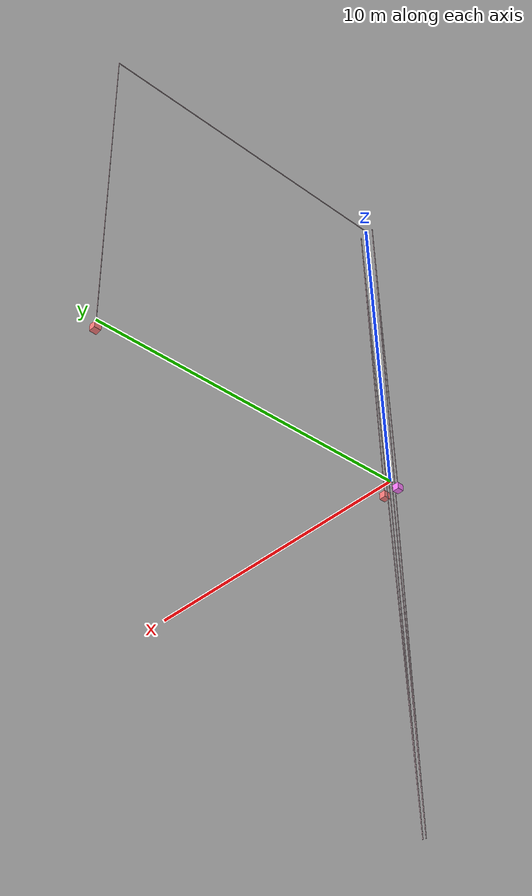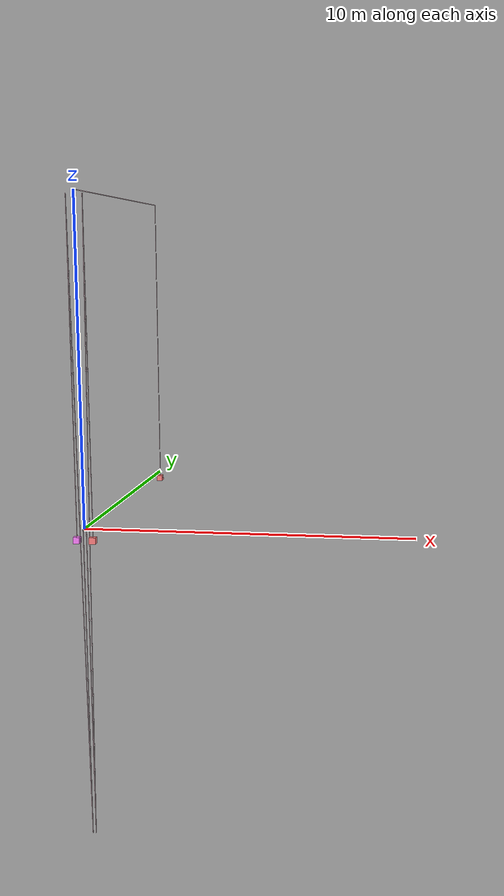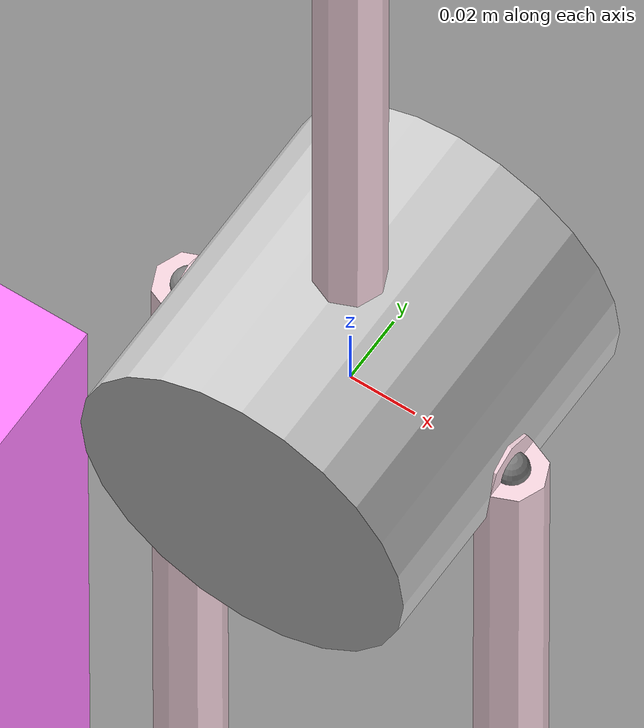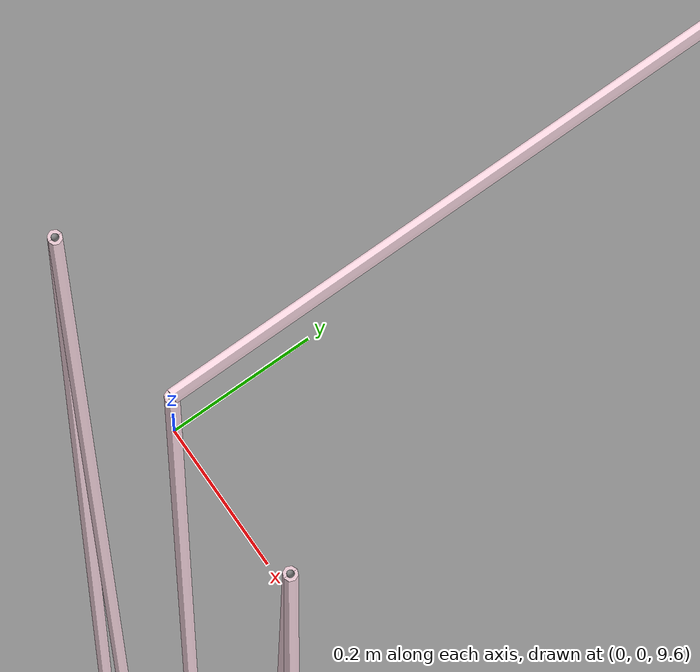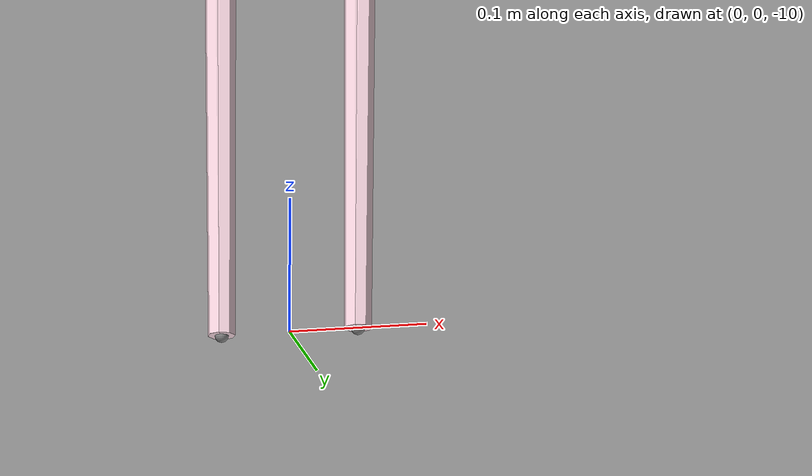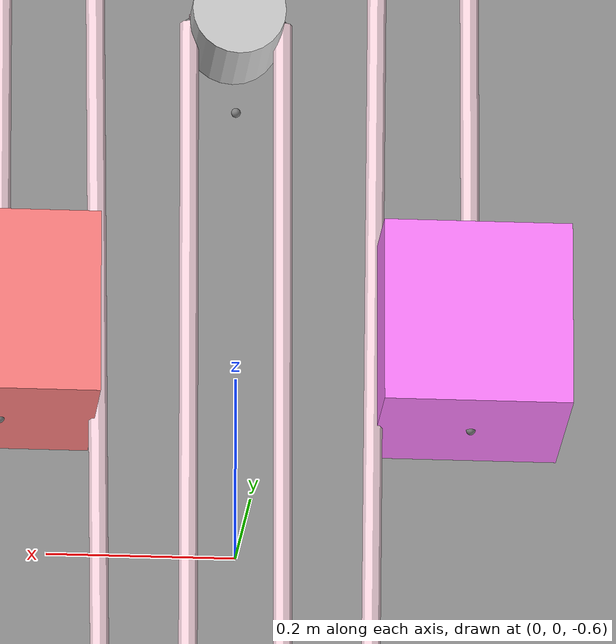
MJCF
<mujoco>
            <compiler angle="radian" autolimits="true" />
            <compiler meshdir="asset" texturedir="asset" assetdir="asset" />
            <option gravity="0 0 -9.81" />
            <default class="main">
            <geom friction="0 0 0" solimp="0.9 1 0.001 0.01 20" solref="0.02 1" condim="1" />
        </default>

        <visual>
            <headlight diffuse="0.7 0.7 0.7" ambient="0.5 0.5 0.5" />
            <global offwidth="1920" offheight="1080" />
        </visual>

        <asset>
            <texture type="skybox" builtin="gradient" rgb1="0 0.5 0.7" rgb2="0 0 0" width="512" height="512" />
            <texture type="2d" name="checks1" builtin="checker" rgb1="1 1 1" rgb2="0 0 0" width="256" height="256" />
            <material name="test_color" texture="checks1" texuniform="true" texrepeat="2 2" />
            <material name="reflectance" reflectance=".4" />
            <texture name="grid" type="2d" builtin="checker" width="512" height="512" rgb1="1.0 0.6235 0.1098" rgb2="1.0 0.749 0.4118" />
            <texture name="white-texture-background" type="2d" file="/home/aryansatpathy/DevStuff/cmu/PHO/sim/geom_sources/fixed_sources/rocket/rocket.white-texture-background.png" content_type="image/png" />
            <material name="pulley" texture="grid" texrepeat="2 2" texuniform="true" />

        </asset>
        <worldbody><body name="masswithreversedmovablepulley_0.left_mass_with_fixed_pulley.fixed_pulley" pos="-0.25 0.0 9.9" quat="1.0 0.0 0.0 0.0"><site name="masswithreversedmovablepulley_0.left_mass_with_fixed_pulley.fixed_pulley.site" pos="0 0 0.0" quat="1.0 -0.0 -0.0 -0.0" />
</body>
<body name="masswithreversedmovablepulley_0.left_mass_with_fixed_pulley.mass" pos="-0.25 0.0 -0.35" quat="1.0 0.0 0.0 0.0">
<geom name="masswithreversedmovablepulley_0.left_mass_with_fixed_pulley.mass.geom" type="box" pos="0 0 0" size="0.1 0.1 0.1" rgba="1.0 0.5 1.0 1.0" mass="4.36" quat="0 0 0 1" condim="1" contype="1" conaffinity="1" />
<site name="masswithreversedmovablepulley_0.left_mass_with_fixed_pulley.mass.top-1" pos="0.0 0 0.1" quat="1.0 -0.0 -0.0 -0.0" />
<site name="masswithreversedmovablepulley_0.left_mass_with_fixed_pulley.mass.sensor" pos="0 0 0" quat="1.0 -0.0 -0.0 -0.0" />
<site name="masswithreversedmovablepulley_0.left_mass_with_fixed_pulley.mass.center" pos="0 0 0" quat="1.0 -0.0 -0.0 -0.0" />
<site name="masswithreversedmovablepulley_0.left_mass_with_fixed_pulley.mass.left" pos="-0.1 0 0" quat="1.0 -0.0 -0.0 -0.0" />
<site name="masswithreversedmovablepulley_0.left_mass_with_fixed_pulley.mass.right" pos="0.1 0 0" quat="1.0 -0.0 -0.0 -0.0" />
<site name="masswithreversedmovablepulley_0.left_mass_with_fixed_pulley.mass.bottom" pos="0 0 -0.1" quat="1.0 -0.0 -0.0 -0.0" />
<joint name="masswithreversedmovablepulley_0.left_mass_with_fixed_pulley.mass.joint" type="slide" axis="0 0 1" pos="0 0 0" />
</body>
<body name="masswithreversedmovablepulley_0.movable_pulley" pos="0.0 0.0 0.0" quat="1.0 0.0 0.0 0.0"><geom name="masswithreversedmovablepulley_0.movable_pulley.geom" type="cylinder" pos="0 0 0" size="0.05 0.05" material="pulley" rgba="0.8 0.8 0.8 1.0" mass="0.15" quat="0 0 0.7071068 0.7071068" contype="1" conaffinity="1" />
<site name="masswithreversedmovablepulley_0.movable_pulley.site" pos="0.0 0 0.05" quat="1.0 -0.0 -0.0 -0.0" />
<site name="masswithreversedmovablepulley_0.movable_pulley.sensor" pos="0 0 0" quat="1.0 -0.0 -0.0 -0.0" />
<site name="masswithreversedmovablepulley_0.movable_pulley.tendon_site" pos="0.0 0 -0.1" quat="1.0 -0.0 -0.0 -0.0" />
<site name="masswithreversedmovablepulley_0.movable_pulley.left_tendon_site" pos="-0.05 0 0" quat="1.0 -0.0 -0.0 -0.0" />
<site name="masswithreversedmovablepulley_0.movable_pulley.right_tendon_site" pos="0.05 0 0" quat="1.0 -0.0 -0.0 -0.0" />
<joint type="slide" axis="1 0 0" pos="0 0 0" />
<joint type="slide" axis="0 1 0" pos="0 0 0" />
<joint type="slide" axis="0 0 1" pos="0 0 0" />
</body>
<body name="masswithreversedmovablepulley_0.right_mass_with_fixed_pulley.fixed_pulley" pos="0.25 0.0 9.9" quat="1.0 0.0 0.0 0.0"><site name="masswithreversedmovablepulley_0.right_mass_with_fixed_pulley.fixed_pulley.site" pos="0 0 0.0" quat="1.0 -0.0 -0.0 -0.0" />
</body>
<body name="masswithreversedmovablepulley_0.right_mass_with_fixed_pulley.mass" pos="0.25 0.0 -0.35" quat="1.0 0.0 0.0 0.0">
<geom name="masswithreversedmovablepulley_0.right_mass_with_fixed_pulley.mass.geom" type="box" pos="0 0 0" size="0.1 0.1 0.1" rgba="1.0 0.5 0.5 1.0" mass="4.29" quat="0 0 0 1" condim="1" contype="1" conaffinity="1" />
<site name="masswithreversedmovablepulley_0.right_mass_with_fixed_pulley.mass.top-1" pos="0.0 0 0.1" quat="1.0 -0.0 -0.0 -0.0" />
<site name="masswithreversedmovablepulley_0.right_mass_with_fixed_pulley.mass.sensor" pos="0 0 0" quat="1.0 -0.0 -0.0 -0.0" />
<site name="masswithreversedmovablepulley_0.right_mass_with_fixed_pulley.mass.center" pos="0 0 0" quat="1.0 -0.0 -0.0 -0.0" />
<site name="masswithreversedmovablepulley_0.right_mass_with_fixed_pulley.mass.left" pos="-0.1 0 0" quat="1.0 -0.0 -0.0 -0.0" />
<site name="masswithreversedmovablepulley_0.right_mass_with_fixed_pulley.mass.right" pos="0.1 0 0" quat="1.0 -0.0 -0.0 -0.0" />
<site name="masswithreversedmovablepulley_0.right_mass_with_fixed_pulley.mass.bottom" pos="0 0 -0.1" quat="1.0 -0.0 -0.0 -0.0" />
<joint name="masswithreversedmovablepulley_0.right_mass_with_fixed_pulley.mass.joint" type="slide" axis="0 0 1" pos="0 0 0" />
</body>
<body name="masswithreversedmovablepulley_0.fixed_pulley_above" pos="0.0 0.0 10.0" quat="1.0 0.0 0.0 0.0"><site name="masswithreversedmovablepulley_0.fixed_pulley_above.site" pos="0 0 0.0" quat="1.0 -0.0 -0.0 -0.0" />
</body>
<body name="masswithreversedmovablepulley_0.left_pulley_below" pos="-0.05 0.0 -10.0" quat="1.0 0.0 0.0 0.0"><site name="masswithreversedmovablepulley_0.left_pulley_below.site" pos="0 0 0.0" quat="1.0 -0.0 -0.0 -0.0" />
</body>
<body name="masswithreversedmovablepulley_0.right_pulley_below" pos="0.05 0.0 -10.0" quat="1.0 0.0 0.0 0.0"><site name="masswithreversedmovablepulley_0.right_pulley_below.site" pos="0 0 0.0" quat="1.0 -0.0 -0.0 -0.0" />
</body>
<body name="masswithfixedpulley_1.fixed_pulley" pos="0.0 10.0 10.0" quat="1.0 0.0 0.0 0.0"><site name="masswithfixedpulley_1.fixed_pulley.site" pos="0 0 0.0" quat="1.0 -0.0 -0.0 -0.0" />
</body>
<body name="masswithfixedpulley_1.mass" pos="0.0 10.0 -0.25" quat="1.0 0.0 0.0 0.0">
<geom name="masswithfixedpulley_1.mass.geom" type="box" pos="0 0 0" size="0.1 0.1 0.1" rgba="1.0 0.5 0.5 1.0" mass="2.6" quat="0 0 0 1" condim="1" contype="1" conaffinity="1" />
<site name="masswithfixedpulley_1.mass.top-1" pos="0.0 0 0.1" quat="1.0 -0.0 -0.0 -0.0" />
<site name="masswithfixedpulley_1.mass.sensor" pos="0 0 0" quat="1.0 -0.0 -0.0 -0.0" />
<site name="masswithfixedpulley_1.mass.center" pos="0 0 0" quat="1.0 -0.0 -0.0 -0.0" />
<site name="masswithfixedpulley_1.mass.left" pos="-0.1 0 0" quat="1.0 -0.0 -0.0 -0.0" />
<site name="masswithfixedpulley_1.mass.right" pos="0.1 0 0" quat="1.0 -0.0 -0.0 -0.0" />
<site name="masswithfixedpulley_1.mass.bottom" pos="0 0 -0.1" quat="1.0 -0.0 -0.0 -0.0" />
<joint name="masswithfixedpulley_1.mass.joint" type="slide" axis="0 0 1" pos="0 0 0" />
</body>
</worldbody><tendon>
<spatial name="spatial_0" width="0.01" rgba="0.9686 0.8392 0.8784 1" range="0 30.1" limited="true" solimplimit="0.99 1 0.001 0.01 20" solreflimit="0.02 1">
<site site="masswithreversedmovablepulley_0.movable_pulley.site" />
<site site="masswithreversedmovablepulley_0.fixed_pulley_above.site" />
<site site="masswithfixedpulley_1.fixed_pulley.site" />
<site site="masswithfixedpulley_1.mass.top-1" />
</spatial>
</tendon>
<tendon>
<spatial name="masswithreversedmovablepulley_0.masswithreversedmovablepulley_0.ready_tendon-0" width="0.01" rgba="0.9686 0.8392 0.8784 1" range="0 80.20200999949627" limited="true" solimplimit="0.99 1 0.001 0.01 20" solreflimit="0.02 1">
<site site="masswithreversedmovablepulley_0.left_mass_with_fixed_pulley.mass.top-1" />
<site site="masswithreversedmovablepulley_0.left_mass_with_fixed_pulley.fixed_pulley.site" />
<site site="masswithreversedmovablepulley_0.left_pulley_below.site" />
<site site="masswithreversedmovablepulley_0.movable_pulley.left_tendon_site" />
<site site="masswithreversedmovablepulley_0.movable_pulley.right_tendon_site" />
<site site="masswithreversedmovablepulley_0.right_pulley_below.site" />
<site site="masswithreversedmovablepulley_0.right_mass_with_fixed_pulley.fixed_pulley.site" />
<site site="masswithreversedmovablepulley_0.right_mass_with_fixed_pulley.mass.top-1" />
</spatial>
</tendon>

        <sensor>

        </sensor>
        <custom>

        </custom>
        <contact>

        </contact>
        <actuator>

        </actuator>
    </mujoco>
